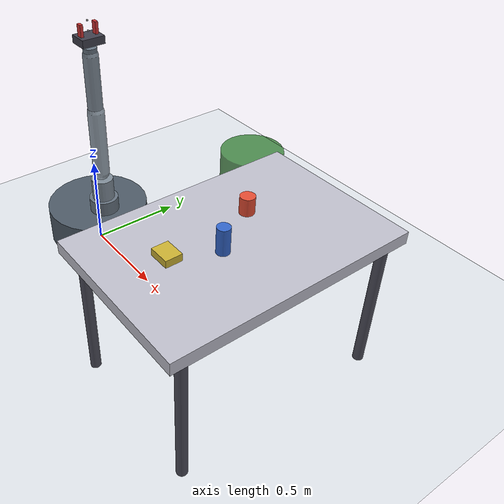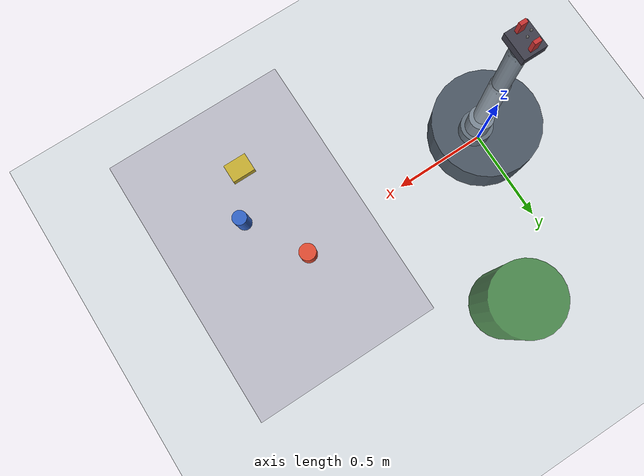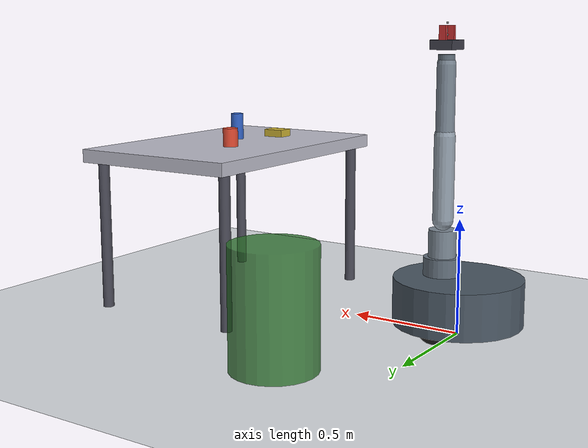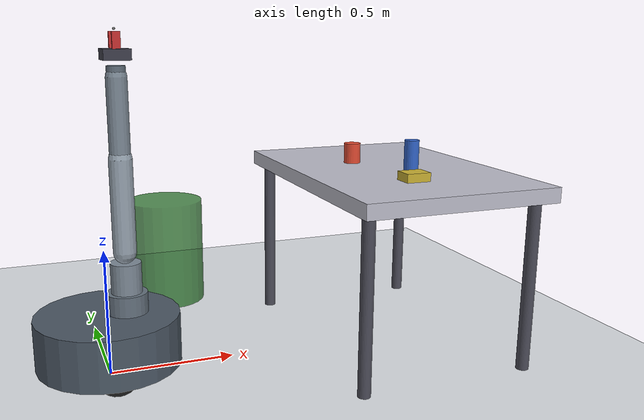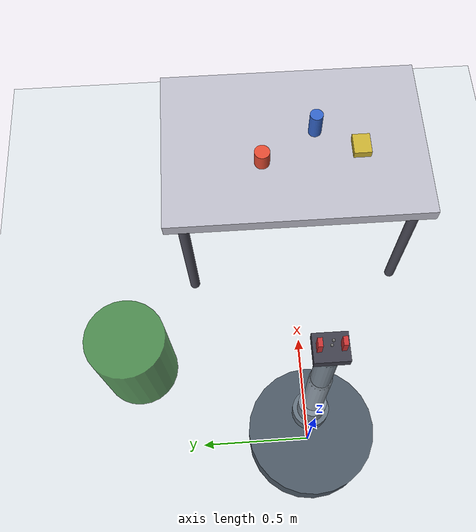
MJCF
<mujoco model="hospital_clutter_mobile_manipulator">
  <compiler angle="radian" coordinate="local" meshdir="meshes/"/>
  <option gravity="0 0 -9.81" timestep="0.002" integrator="RK4"/>

  <visual>
    <headlight ambient="0.4 0.4 0.4" diffuse="0.8 0.8 0.8" specular="0.2 0.2 0.2"/>
    <rgba fog="0.9 0.9 0.95 1"/>
  </visual>

  <default>
    <joint damping="1.0" armature="0.01"/>
    <geom friction="0.8 0.01 0.001" solref="0.01 1" solimp="0.9 0.95 0.001"/>
    <motor ctrlrange="-50 50" ctrllimited="true"/>
  </default>

  <worldbody>
    <!-- Hospital Room Floor -->
    <geom name="floor" type="plane" size="5 5 0.1" rgba="0.88 0.90 0.92 1"/>

    <!-- Bedside Table -->
    <body name="bedside_table" pos="1.2 0 0">
      <geom name="table_top" type="box" size="0.4 0.6 0.03" pos="0 0 0.72" rgba="0.75 0.75 0.80 1"/>
      <geom name="leg1" type="cylinder" size="0.025 0.35" pos="0.35 0.52 0.35" rgba="0.3 0.3 0.35 1"/>
      <geom name="leg2" type="cylinder" size="0.025 0.35" pos="-0.35 0.52 0.35" rgba="0.3 0.3 0.35 1"/>
      <geom name="leg3" type="cylinder" size="0.025 0.35" pos="0.35 -0.52 0.35" rgba="0.3 0.3 0.35 1"/>
      <geom name="leg4" type="cylinder" size="0.025 0.35" pos="-0.35 -0.52 0.35" rgba="0.3 0.3 0.35 1"/>
    </body>

    <!-- Waste Receptacle Bin -->
    <body name="waste_bin" pos="0.4 0.8 0">
      <geom name="bin_base" type="cylinder" size="0.18 0.25" pos="0 0 0.25" rgba="0.2 0.5 0.2 0.8"/>
    </body>

    <!-- Clutter Objects on Bedside Table -->
    <body name="clutter_cup" pos="1.1 0.15 0.78">
      <freejoint name="cup_free"/>
      <geom name="cup_geom" type="cylinder" size="0.035 0.055" rgba="0.9 0.3 0.2 1" mass="0.12"/>
    </body>

    <body name="clutter_bottle" pos="1.25 -0.1 0.80">
      <freejoint name="bottle_free"/>
      <geom name="bottle_geom" type="cylinder" size="0.03 0.075" rgba="0.2 0.4 0.8 1" mass="0.18"/>
    </body>

    <body name="clutter_box" pos="1.15 -0.3 0.76">
      <freejoint name="box_free"/>
      <geom name="box_geom" type="box" size="0.05 0.04 0.025" rgba="0.8 0.7 0.2 1" mass="0.09"/>
    </body>

    <!-- Mobile Manipulator Robot -->
    <body name="mobile_base" pos="0 0 0.15">
      <!-- 3-DOF Planar Mobile Base (X, Y, Yaw) -->
      <joint name="base_x" type="slide" axis="1 0 0" range="-3 3"/>
      <joint name="base_y" type="slide" axis="0 1 0" range="-3 3"/>
      <joint name="base_yaw" type="hinge" axis="0 0 1" range="-3.1415 3.1415"/>
      <geom name="base_chassis" type="cylinder" size="0.28 0.10" rgba="0.3 0.35 0.4 1" mass="25.0"/>
      <geom name="wheel_left" type="cylinder" size="0.08 0.03" pos="0 0.22 -0.05" quat="0.7071 0.7071 0 0" rgba="0.1 0.1 0.1 1" mass="1.5"/>
      <geom name="wheel_right" type="cylinder" size="0.08 0.03" pos="0 -0.22 -0.05" quat="0.7071 0.7071 0 0" rgba="0.1 0.1 0.1 1" mass="1.5"/>

      <!-- Manipulator Base Pedestal -->
      <body name="arm_base" pos="0.08 0 0.10">
        <geom name="arm_pedestal" type="cylinder" size="0.08 0.08" rgba="0.4 0.45 0.5 1" mass="5.0"/>

        <!-- Link 1 (Waist Yaw) -->
        <body name="link1" pos="0 0 0.12">
          <joint name="joint_waist" type="hinge" axis="0 0 1" range="-2.5 2.5"/>
          <geom name="link1_geom" type="cylinder" size="0.06 0.08" rgba="0.5 0.55 0.6 1" mass="3.0"/>

          <!-- Link 2 (Shoulder Pitch) -->
          <body name="link2" pos="0 0 0.12">
            <joint name="joint_shoulder" type="hinge" axis="0 1 0" range="-1.8 1.8"/>
            <geom name="link2_geom" type="capsule" size="0.045 0.18" pos="0 0 0.18" rgba="0.6 0.65 0.7 1" mass="3.5"/>

            <!-- Link 3 (Elbow Pitch) -->
            <body name="link3" pos="0 0 0.36">
              <joint name="joint_elbow" type="hinge" axis="0 1 0" range="-2.2 2.2"/>
              <geom name="link3_geom" type="capsule" size="0.04 0.15" pos="0 0 0.15" rgba="0.5 0.55 0.6 1" mass="2.5"/>

              <!-- Link 4 (Wrist Pitch) -->
              <body name="link4" pos="0 0 0.30">
                <joint name="joint_wrist_pitch" type="hinge" axis="0 1 0" range="-1.8 1.8"/>
                <geom name="link4_geom" type="cylinder" size="0.035 0.04" rgba="0.4 0.45 0.5 1" mass="1.2"/>

                <!-- Link 5 (Wrist Roll) & Gripper Assembly -->
                <body name="gripper_base" pos="0 0 0.08">
                  <joint name="joint_wrist_roll" type="hinge" axis="0 0 1" range="-3.14 3.14"/>
                  <geom name="palm" type="box" size="0.05 0.06 0.02" rgba="0.25 0.25 0.3 1" mass="0.8"/>
                  <site name="wrist_camera" pos="0 0 0.04" quat="0.7071 0 0.7071 0"/>
                  <site name="gripper_center" pos="0 0 0.09"/>

                  <!-- Left Gripper Finger -->
                  <body name="finger_left" pos="0 0.04 0.04">
                    <joint name="joint_finger_left" type="slide" axis="0 1 0" range="-0.04 0.0"/>
                    <geom name="finger_l_geom" type="box" size="0.015 0.008 0.04" rgba="0.8 0.2 0.2 1" mass="0.1"/>
                  </body>

                  <!-- Right Gripper Finger -->
                  <body name="finger_right" pos="0 -0.04 0.04">
                    <joint name="joint_finger_right" type="slide" axis="0 1 0" range="0.0 0.04"/>
                    <geom name="finger_r_geom" type="box" size="0.015 0.008 0.04" rgba="0.8 0.2 0.2 1" mass="0.1"/>
                  </body>
                </body>
              </body>
            </body>
          </body>
        </body>
      </body>
    </body>
  </worldbody>

  <actuator>
    <motor name="act_base_x" joint="base_x" ctrlrange="-150 150"/>
    <motor name="act_base_y" joint="base_y" ctrlrange="-150 150"/>
    <motor name="act_base_yaw" joint="base_yaw" ctrlrange="-60 60"/>
    <motor name="act_waist" joint="joint_waist" ctrlrange="-40 40"/>
    <motor name="act_shoulder" joint="joint_shoulder" ctrlrange="-60 60"/>
    <motor name="act_elbow" joint="joint_elbow" ctrlrange="-40 40"/>
    <motor name="act_wrist_pitch" joint="joint_wrist_pitch" ctrlrange="-25 25"/>
    <motor name="act_wrist_roll" joint="joint_wrist_roll" ctrlrange="-15 15"/>
    <motor name="act_finger_left" joint="joint_finger_left" ctrlrange="-20 20"/>
    <motor name="act_finger_right" joint="joint_finger_right" ctrlrange="-20 20"/>
  </actuator>

  <sensor>
    <touch name="touch_finger_left" site="gripper_center"/>
  </sensor>
</mujoco>
